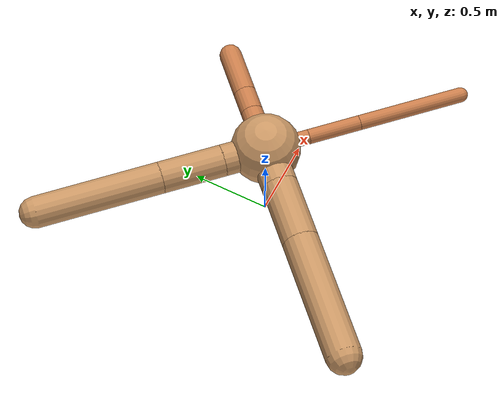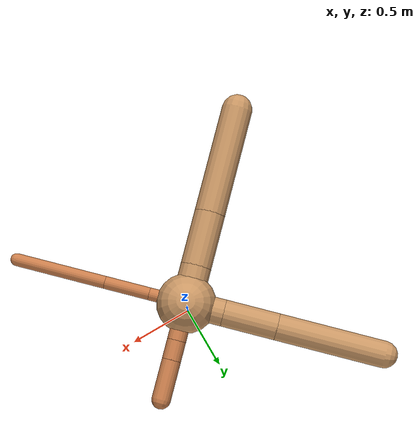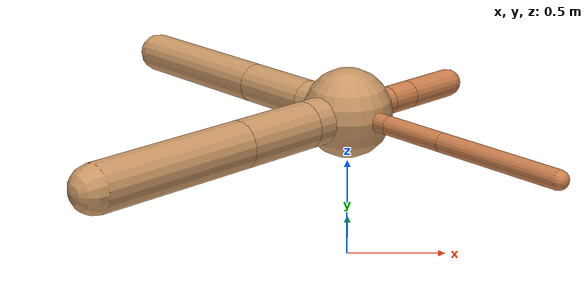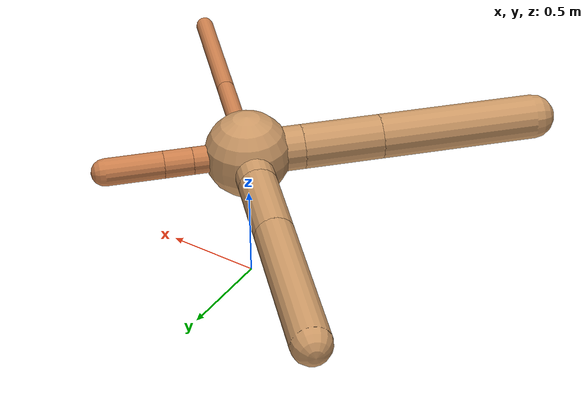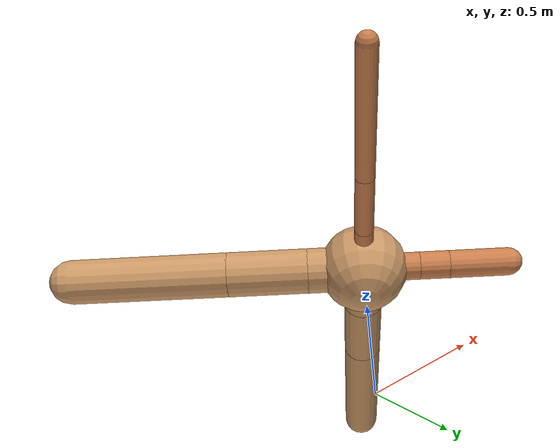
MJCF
<?xml version="1.0" ?>
<mujoco model="ant">

	<compiler angle="degree" coordinate="local" inertiafromgeom="true"/>

	<option integrator="RK4" timestep="0.01"/>

	<custom>

		<numeric data="0.0 0.0 0.55 1.0 0.0 0.0 0.0 0.0 1.0 0.0 -1.0 0.0 -1.0 0.0 1.0" name="init_qpos"/>

	</custom>

	<default>

		<joint armature="1" damping="1" limited="true"/>

		<geom conaffinity="0" condim="3" density="5.0" friction="1.5 0.1 0.1" margin="0.01" rgba="0.8 0.6 0.4 1"/>

	</default>

	<worldbody>

		<body name="torso" pos="0 0 0.75">

			<geom name="torso_geom" pos="0 0 0" size="0.22310345217099503" type="sphere"/>

			<!--joint armature="0" damping="0" limited="false" margin="0.01" name="root" pos="0 0 0" type="free"/-->

			<body name="front_left_leg" pos="0 0 0">

				<geom fromto="0 0 0 0.2 0.2 0" name="aux_1_geom" size="0.07086852929523212" type="capsule" rgba=".8 .5 .3 1"/>

				<body name="aux_1" pos="0.2 0.2 0">

					<joint axis="0 0 1" name="hip_1" pos="0.0 0.0 0.0" range="-40 40" type="hinge"/>

					<geom fromto="0 0 0 0.1048612142750348 0.1048612142750348 0" name="left_leg_geom" size="0.07086852929523212" type="capsule" rgba=".8 .5 .3 1"/>

					<body pos="0.1048612142750348 0.1048612142750348 0" name="front_left_foot">

						<joint axis="-1 1 0" name="ankle_1" pos="0.0 0.0 0.0" range="30 100" type="hinge"/>

						<geom fromto="0 0 0 0.2097224285500696 0.2097224285500696 0" name="left_ankle_geom" size="0.07086852929523212" type="capsule" rgba=".8 .5 .3 1"/>

					</body>

				</body>

			</body>

			<body name="front_right_leg" pos="0 0 0">

				<geom fromto="0 0 0 -0.2 0.2 0" name="aux_2_geom" size="0.10044125245556325" type="capsule"/>

				<body name="aux_2" pos="-0.2 0.2 0">

					<joint axis="0 0 1" name="hip_2" pos="0.0 0.0 0.0" range="-40 40" type="hinge"/>

					<geom fromto="0 0 0 -0.2870189109586784 0.2870189109586784 0" name="right_leg_geom" size="0.10044125245556325" type="capsule"/>

					<body pos="-0.2870189109586784 0.2870189109586784 0" name="front_right_foot">

						<joint axis="1 1 0" name="ankle_2" pos="0.0 0.0 0.0" range="-100 -30" type="hinge"/>

						<geom fromto="0 0 0 -0.5740378219173567 0.5740378219173567 0" name="right_ankle_geom" size="0.10044125245556325" type="capsule"/>

					</body>

				</body>

			</body>

			<body name="left_back_leg" pos="0 0 0">

				<geom fromto="0 0 0 -0.2 -0.2 0" name="aux_3_geom" size="0.11598010634150471" type="capsule"/>

				<body name="aux_3" pos="-0.2 -0.2 0">

					<joint axis="0 0 1" name="hip_3" pos="0.0 0.0 0.0" range="-40 40" type="hinge"/>

					<geom fromto="0 0 0 -0.29073695229822644 -0.29073695229822644 0" name="back_leg_geom" size="0.11598010634150471" type="capsule"/>

					<body pos="-0.29073695229822644 -0.29073695229822644 0" name="left_back_foot">

						<joint axis="-1 1 0" name="ankle_3" pos="0.0 0.0 0.0" range="-100 -30" type="hinge"/>

						<geom fromto="0 0 0 -0.5814739045964529 -0.5814739045964529 0" name="third_ankle_geom" size="0.11598010634150471" type="capsule"/>

					</body>

				</body>

			</body>

			<body name="right_back_leg" pos="0 0 0">

				<geom fromto="0 0 0 0.2 -0.2 0" name="aux_4_geom" size="0.046995369038491004" type="capsule" rgba=".8 .5 .3 1"/>

				<body name="aux_4" pos="0.2 -0.2 0">

					<joint axis="0 0 1" name="hip_4" pos="0.0 0.0 0.0" range="-40 40" type="hinge"/>

					<geom fromto="0 0 0 0.23982507263743957 -0.23982507263743957 0" name="rightback_leg_geom" size="0.046995369038491004" type="capsule" rgba=".8 .5 .3 1"/>

					<body pos="0.23982507263743957 -0.23982507263743957 0" name="right_back_foot">

						<joint axis="1 1 0" name="ankle_4" pos="0.0 0.0 0.0" range="30 100" type="hinge"/>

						<geom fromto="0 0 0 0.47965014527487915 -0.47965014527487915 0" name="fourth_ankle_geom" size="0.046995369038491004" type="capsule" rgba=".8 .5 .3 1"/>

					</body>

				</body>

			</body>

		</body>

	</worldbody>

	<actuator>

		<motor ctrllimited="true" ctrlrange="-1.0 1.0" joint="hip_4" gear="150"/>

		<motor ctrllimited="true" ctrlrange="-1.0 1.0" joint="ankle_4" gear="150"/>

		<motor ctrllimited="true" ctrlrange="-1.0 1.0" joint="hip_1" gear="150"/>

		<motor ctrllimited="true" ctrlrange="-1.0 1.0" joint="ankle_1" gear="150"/>

		<motor ctrllimited="true" ctrlrange="-1.0 1.0" joint="hip_2" gear="150"/>

		<motor ctrllimited="true" ctrlrange="-1.0 1.0" joint="ankle_2" gear="150"/>

		<motor ctrllimited="true" ctrlrange="-1.0 1.0" joint="hip_3" gear="150"/>

		<motor ctrllimited="true" ctrlrange="-1.0 1.0" joint="ankle_3" gear="150"/>

	</actuator>

</mujoco>
